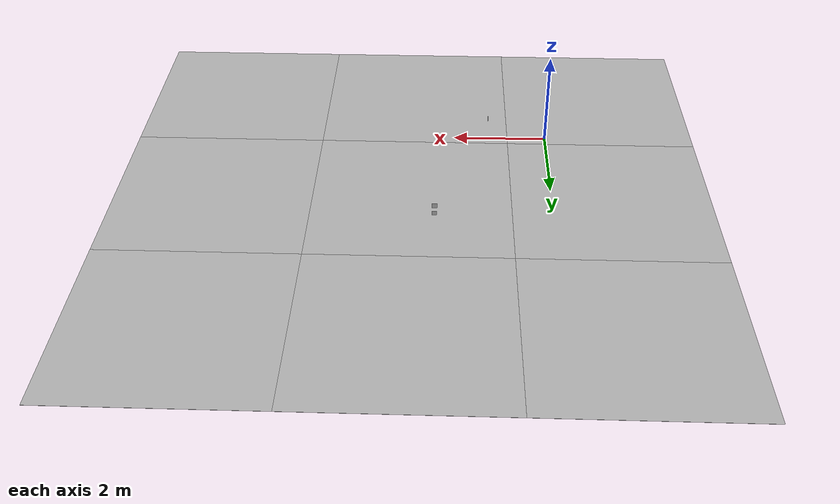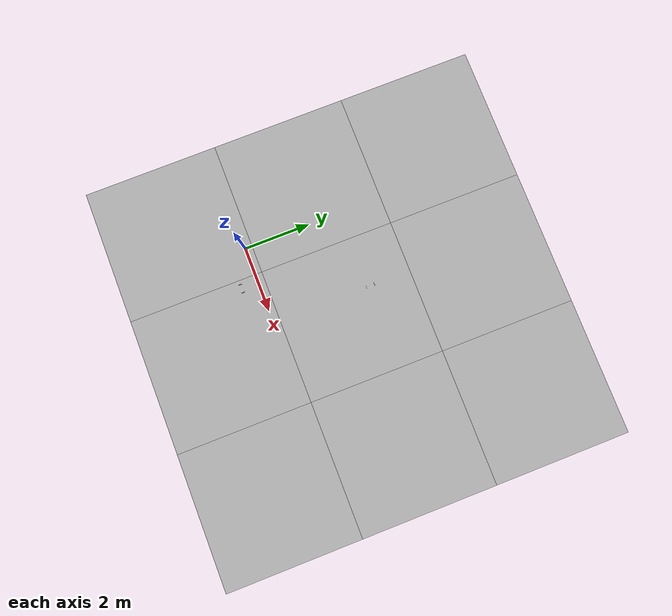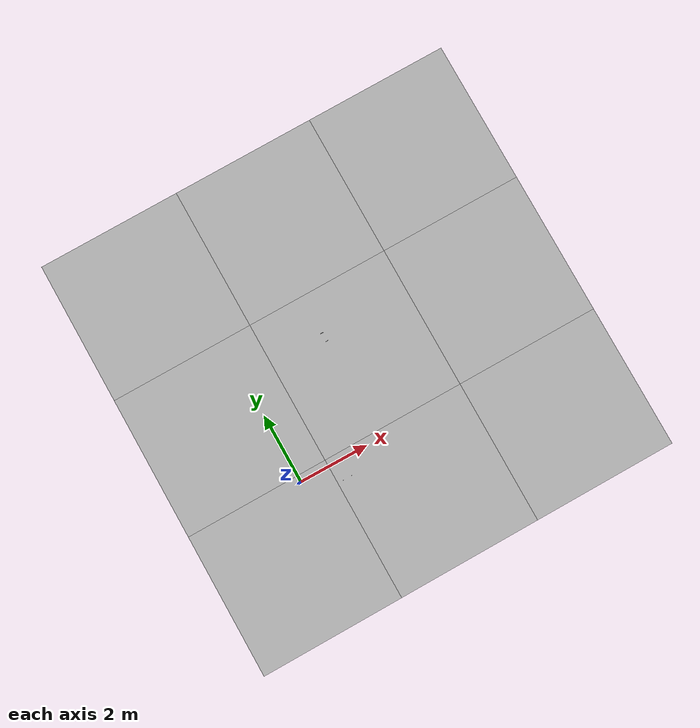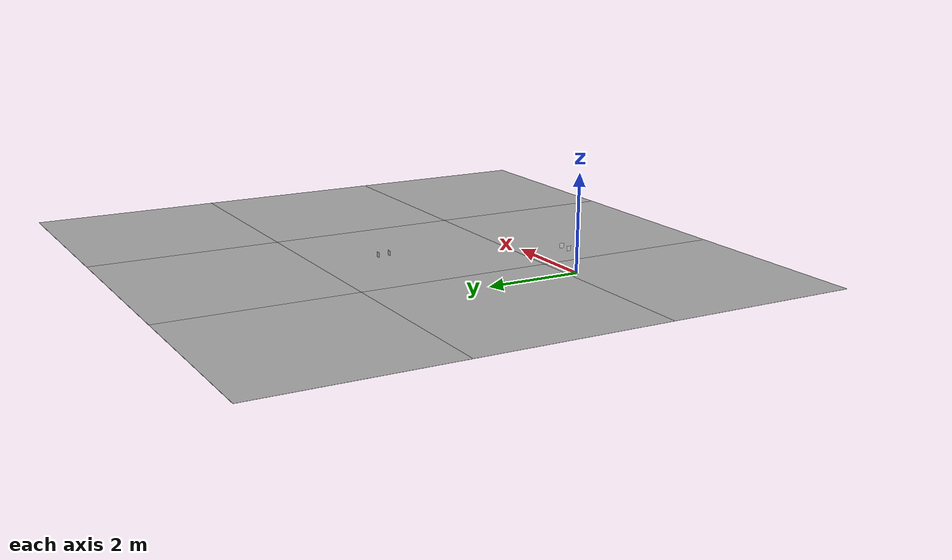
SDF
<sdf version='1.6'><world name='default'>
    <light name='sun_light' type='directional'>
      <pose frame=''>0 0 10 0 -0 0</pose>
      <diffuse>0.5 0.5 0.5 1</diffuse>
      <specular>0.1 0.1 0.1 1</specular>
      <direction>0.1 0.1 -0.9</direction>
      <attenuation>
        <range>20</range>
        <constant>0.5</constant>
        <linear>0.01</linear>
        <quadratic>0.001</quadratic>
      </attenuation>
      <cast_shadows>1</cast_shadows>
    </light>

    <model name='Tile/0-0'>
      <static>1</static>
      <link name='link'>
        <collision name='collision'>
          <geometry>
            <plane>
              <normal>0 0 1</normal>
              <size>4.096 4.096</size>
            </plane>
          </geometry>
          <surface>
            <friction>
              <ode>
                <mu>100</mu>
                <mu2>50</mu2>
              </ode>
              <torsional>
                <ode/>
              </torsional>
            </friction>
            <contact>
              <ode/>
            </contact>
            <bounce/>
          </surface>
          <max_contacts>10</max_contacts>
        </collision>
        <visual name='visual'>
          <cast_shadows>0</cast_shadows>
          <geometry>
            <plane>
              <normal>0 0 1</normal>
              <size>4.096 4.096</size>
            </plane>
          </geometry>
          <material>
            <script>
              <uri>file://materials/scripts</uri>
              <uri>file://materials/textures</uri>
              <name>Tile/77423c6e557b0f0f9140abce4a80dbedff05929874ad9ab86a4e6175a38289ea</name>
            </script>
          </material>
        </visual>
        <self_collide>0</self_collide>
        <enable_wind>0</enable_wind>
        <kinematic>0</kinematic>
      </link>
      <pose frame=''>-1.2164776170192146 -1.8519999999999999 0 0 -0 0</pose>
    </model>

    <model name='Tile/0-1'>
      <static>1</static>
      <link name='link'>
        <collision name='collision'>
          <geometry>
            <plane>
              <normal>0 0 1</normal>
              <size>4.096 4.096</size>
            </plane>
          </geometry>
          <surface>
            <friction>
              <ode>
                <mu>100</mu>
                <mu2>50</mu2>
              </ode>
              <torsional>
                <ode/>
              </torsional>
            </friction>
            <contact>
              <ode/>
            </contact>
            <bounce/>
          </surface>
          <max_contacts>10</max_contacts>
        </collision>
        <visual name='visual'>
          <cast_shadows>0</cast_shadows>
          <geometry>
            <plane>
              <normal>0 0 1</normal>
              <size>4.096 4.096</size>
            </plane>
          </geometry>
          <material>
            <script>
              <uri>file://materials/scripts</uri>
              <uri>file://materials/textures</uri>
              <name>Tile/9b7adc8b35dfaa86d04eabaa1236cfa9c74374e5d5d86707099bdeb6f965c490</name>
            </script>
          </material>
        </visual>
        <self_collide>0</self_collide>
        <enable_wind>0</enable_wind>
        <kinematic>0</kinematic>
      </link>
      <pose frame=''>-1.2164776170192146 2.244 0 0 -0 0</pose>
    </model>

    <model name='Tile/0-2'>
      <static>1</static>
      <link name='link'>
        <collision name='collision'>
          <geometry>
            <plane>
              <normal>0 0 1</normal>
              <size>4.096 4.096</size>
            </plane>
          </geometry>
          <surface>
            <friction>
              <ode>
                <mu>100</mu>
                <mu2>50</mu2>
              </ode>
              <torsional>
                <ode/>
              </torsional>
            </friction>
            <contact>
              <ode/>
            </contact>
            <bounce/>
          </surface>
          <max_contacts>10</max_contacts>
        </collision>
        <visual name='visual'>
          <cast_shadows>0</cast_shadows>
          <geometry>
            <plane>
              <normal>0 0 1</normal>
              <size>4.096 4.096</size>
            </plane>
          </geometry>
          <material>
            <script>
              <uri>file://materials/scripts</uri>
              <uri>file://materials/textures</uri>
              <name>Tile/5eab350b8220ac9944dbdfa4ac3288c7c17e24c3bf5df0dfcf6173d64dae00a1</name>
            </script>
          </material>
        </visual>
        <self_collide>0</self_collide>
        <enable_wind>0</enable_wind>
        <kinematic>0</kinematic>
      </link>
      <pose frame=''>-1.2164776170192146 6.34 0 0 -0 0</pose>
    </model>

    <model name='Tile/1-0'>
      <static>1</static>
      <link name='link'>
        <collision name='collision'>
          <geometry>
            <plane>
              <normal>0 0 1</normal>
              <size>4.096 4.096</size>
            </plane>
          </geometry>
          <surface>
            <friction>
              <ode>
                <mu>100</mu>
                <mu2>50</mu2>
              </ode>
              <torsional>
                <ode/>
              </torsional>
            </friction>
            <contact>
              <ode/>
            </contact>
            <bounce/>
          </surface>
          <max_contacts>10</max_contacts>
        </collision>
        <visual name='visual'>
          <cast_shadows>0</cast_shadows>
          <geometry>
            <plane>
              <normal>0 0 1</normal>
              <size>4.096 4.096</size>
            </plane>
          </geometry>
          <material>
            <script>
              <uri>file://materials/scripts</uri>
              <uri>file://materials/textures</uri>
              <name>Tile/5bd2d556b5aca25cb5e4d65a76dc7bc3eee3137c73dcf68c77cf07f8d436aac9</name>
            </script>
          </material>
        </visual>
        <self_collide>0</self_collide>
        <enable_wind>0</enable_wind>
        <kinematic>0</kinematic>
      </link>
      <pose frame=''>2.8795223829807854 -1.8519999999999999 0 0 -0 0</pose>
    </model>

    <model name='Tile/1-1'>
      <static>1</static>
      <link name='link'>
        <collision name='collision'>
          <geometry>
            <plane>
              <normal>0 0 1</normal>
              <size>4.096 4.096</size>
            </plane>
          </geometry>
          <surface>
            <friction>
              <ode>
                <mu>100</mu>
                <mu2>50</mu2>
              </ode>
              <torsional>
                <ode/>
              </torsional>
            </friction>
            <contact>
              <ode/>
            </contact>
            <bounce/>
          </surface>
          <max_contacts>10</max_contacts>
        </collision>
        <visual name='visual'>
          <cast_shadows>0</cast_shadows>
          <geometry>
            <plane>
              <normal>0 0 1</normal>
              <size>4.096 4.096</size>
            </plane>
          </geometry>
          <material>
            <script>
              <uri>file://materials/scripts</uri>
              <uri>file://materials/textures</uri>
              <name>Tile/bfc58647bb43cdf5843226c2724724f19bd49f413f3c33f0f1314cdeb2e539f0</name>
            </script>
          </material>
        </visual>
        <self_collide>0</self_collide>
        <enable_wind>0</enable_wind>
        <kinematic>0</kinematic>
      </link>
      <pose frame=''>2.8795223829807854 2.244 0 0 -0 0</pose>
    </model>

    <model name='Tile/1-2'>
      <static>1</static>
      <link name='link'>
        <collision name='collision'>
          <geometry>
            <plane>
              <normal>0 0 1</normal>
              <size>4.096 4.096</size>
            </plane>
          </geometry>
          <surface>
            <friction>
              <ode>
                <mu>100</mu>
                <mu2>50</mu2>
              </ode>
              <torsional>
                <ode/>
              </torsional>
            </friction>
            <contact>
              <ode/>
            </contact>
            <bounce/>
          </surface>
          <max_contacts>10</max_contacts>
        </collision>
        <visual name='visual'>
          <cast_shadows>0</cast_shadows>
          <geometry>
            <plane>
              <normal>0 0 1</normal>
              <size>4.096 4.096</size>
            </plane>
          </geometry>
          <material>
            <script>
              <uri>file://materials/scripts</uri>
              <uri>file://materials/textures</uri>
              <name>Tile/7a722920c4f9387e890127840dbfa9c10046762a469d233bde542e1773ede31b</name>
            </script>
          </material>
        </visual>
        <self_collide>0</self_collide>
        <enable_wind>0</enable_wind>
        <kinematic>0</kinematic>
      </link>
      <pose frame=''>2.8795223829807854 6.34 0 0 -0 0</pose>
    </model>

    <model name='Tile/2-0'>
      <static>1</static>
      <link name='link'>
        <collision name='collision'>
          <geometry>
            <plane>
              <normal>0 0 1</normal>
              <size>4.096 4.096</size>
            </plane>
          </geometry>
          <surface>
            <friction>
              <ode>
                <mu>100</mu>
                <mu2>50</mu2>
              </ode>
              <torsional>
                <ode/>
              </torsional>
            </friction>
            <contact>
              <ode/>
            </contact>
            <bounce/>
          </surface>
          <max_contacts>10</max_contacts>
        </collision>
        <visual name='visual'>
          <cast_shadows>0</cast_shadows>
          <geometry>
            <plane>
              <normal>0 0 1</normal>
              <size>4.096 4.096</size>
            </plane>
          </geometry>
          <material>
            <script>
              <uri>file://materials/scripts</uri>
              <uri>file://materials/textures</uri>
              <name>Tile/5eab350b8220ac9944dbdfa4ac3288c7c17e24c3bf5df0dfcf6173d64dae00a1</name>
            </script>
          </material>
        </visual>
        <self_collide>0</self_collide>
        <enable_wind>0</enable_wind>
        <kinematic>0</kinematic>
      </link>
      <pose frame=''>6.9755223829807855 -1.8519999999999999 0 0 -0 0</pose>
    </model>

    <model name='Tile/2-1'>
      <static>1</static>
      <link name='link'>
        <collision name='collision'>
          <geometry>
            <plane>
              <normal>0 0 1</normal>
              <size>4.096 4.096</size>
            </plane>
          </geometry>
          <surface>
            <friction>
              <ode>
                <mu>100</mu>
                <mu2>50</mu2>
              </ode>
              <torsional>
                <ode/>
              </torsional>
            </friction>
            <contact>
              <ode/>
            </contact>
            <bounce/>
          </surface>
          <max_contacts>10</max_contacts>
        </collision>
        <visual name='visual'>
          <cast_shadows>0</cast_shadows>
          <geometry>
            <plane>
              <normal>0 0 1</normal>
              <size>4.096 4.096</size>
            </plane>
          </geometry>
          <material>
            <script>
              <uri>file://materials/scripts</uri>
              <uri>file://materials/textures</uri>
              <name>Tile/5eab350b8220ac9944dbdfa4ac3288c7c17e24c3bf5df0dfcf6173d64dae00a1</name>
            </script>
          </material>
        </visual>
        <self_collide>0</self_collide>
        <enable_wind>0</enable_wind>
        <kinematic>0</kinematic>
      </link>
      <pose frame=''>6.9755223829807855 2.244 0 0 -0 0</pose>
    </model>

    <model name='Tile/2-2'>
      <static>1</static>
      <link name='link'>
        <collision name='collision'>
          <geometry>
            <plane>
              <normal>0 0 1</normal>
              <size>4.096 4.096</size>
            </plane>
          </geometry>
          <surface>
            <friction>
              <ode>
                <mu>100</mu>
                <mu2>50</mu2>
              </ode>
              <torsional>
                <ode/>
              </torsional>
            </friction>
            <contact>
              <ode/>
            </contact>
            <bounce/>
          </surface>
          <max_contacts>10</max_contacts>
        </collision>
        <visual name='visual'>
          <cast_shadows>0</cast_shadows>
          <geometry>
            <plane>
              <normal>0 0 1</normal>
              <size>4.096 4.096</size>
            </plane>
          </geometry>
          <material>
            <script>
              <uri>file://materials/scripts</uri>
              <uri>file://materials/textures</uri>
              <name>Tile/5eab350b8220ac9944dbdfa4ac3288c7c17e24c3bf5df0dfcf6173d64dae00a1</name>
            </script>
          </material>
        </visual>
        <self_collide>0</self_collide>
        <enable_wind>0</enable_wind>
        <kinematic>0</kinematic>
      </link>
      <pose frame=''>6.9755223829807855 6.34 0 0 -0 0</pose>
    </model>

    <model name='Sign/-13'>
      <static>1</static>
      <link name='link'>
        <visual name='visual'>
          <cast_shadows>0</cast_shadows>
          <geometry>
            <plane>
              <normal>0 0 1</normal>
              <size>0.1 0.1</size>
            </plane>
          </geometry>
          <material>
            <script>
              <uri>file://materials/scripts</uri>
              <uri>file://materials/textures</uri>
              <name>Sign/stvo-209-10</name>
            </script>
          </material>
        </visual>
        <self_collide>0</self_collide>
        <enable_wind>0</enable_wind>
        <kinematic>0</kinematic>
      </link>
      <pose frame=''>1.25 -0.49999999999999994 0.2 1.5707963267948966 0 4.71238898038469</pose>
    </model>

    <model name='Sign/-14'>
      <static>1</static>
      <link name='link'>
        <visual name='visual'>
          <cast_shadows>0</cast_shadows>
          <geometry>
            <plane>
              <normal>0 0 1</normal>
              <size>0.1 0.1</size>
            </plane>
          </geometry>
          <material>
            <script>
              <uri>file://materials/scripts</uri>
              <uri>file://materials/textures</uri>
              <name>Sign/stvo-205</name>
            </script>
          </material>
        </visual>
        <self_collide>0</self_collide>
        <enable_wind>0</enable_wind>
        <kinematic>0</kinematic>
      </link>
      <pose frame=''>0.9999999999999999 -0.49999999999999994 0.2 1.5707963267948966 0 4.71238898038469</pose>
    </model>

    <model name='Sign/-27'>
      <static>1</static>
      <link name='link'>
        <visual name='visual'>
          <cast_shadows>0</cast_shadows>
          <geometry>
            <plane>
              <normal>0 0 1</normal>
              <size>0.1 0.1</size>
            </plane>
          </geometry>
          <material>
            <script>
              <uri>file://materials/scripts</uri>
              <uri>file://materials/textures</uri>
              <name>Sign/stvo-209-10</name>
            </script>
          </material>
        </visual>
        <self_collide>0</self_collide>
        <enable_wind>0</enable_wind>
        <kinematic>0</kinematic>
      </link>
      <pose frame=''>2.4000000000000004 3.15 0.2 1.5707963267948966 0 6.283185307179586</pose>
    </model>

    <model name='Sign/-28'>
      <static>1</static>
      <link name='link'>
        <visual name='visual'>
          <cast_shadows>0</cast_shadows>
          <geometry>
            <plane>
              <normal>0 0 1</normal>
              <size>0.1 0.1</size>
            </plane>
          </geometry>
          <material>
            <script>
              <uri>file://materials/scripts</uri>
              <uri>file://materials/textures</uri>
              <name>Sign/stvo-205</name>
            </script>
          </material>
        </visual>
        <self_collide>0</self_collide>
        <enable_wind>0</enable_wind>
        <kinematic>0</kinematic>
      </link>
      <pose frame=''>2.4000000000000004 2.9 0.2 1.5707963267948966 0 6.283185307179586</pose>
    </model>
    </world></sdf>
